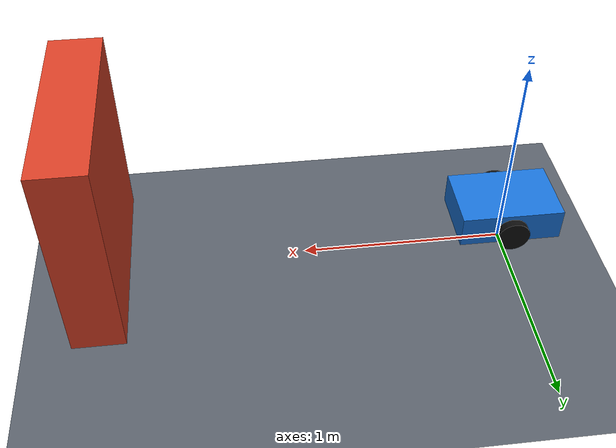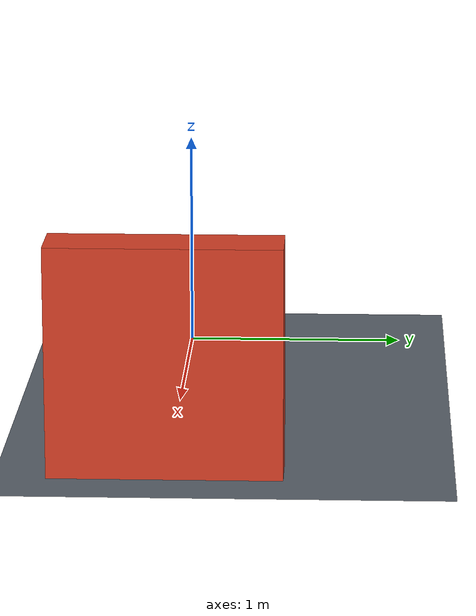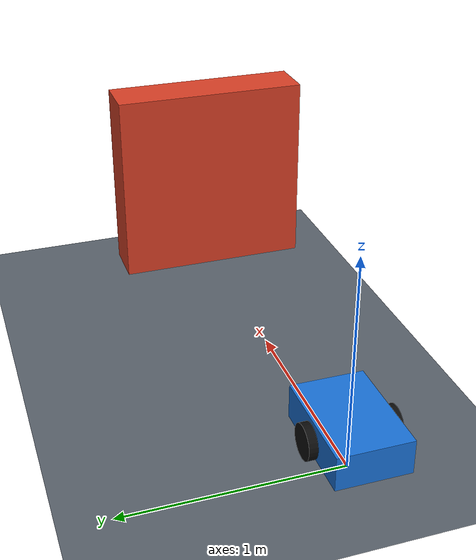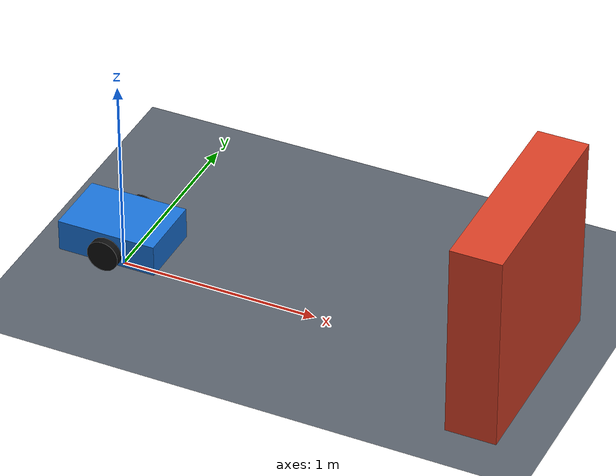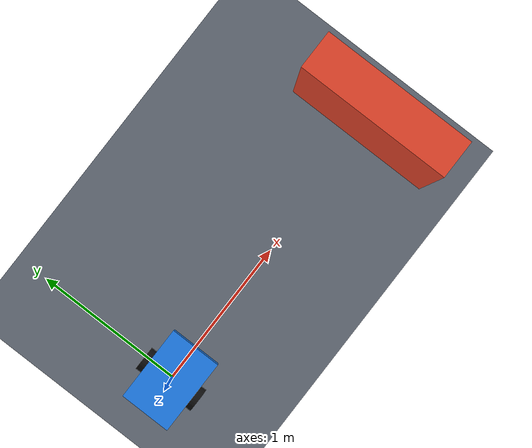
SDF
<?xml version="1.0"?>
<sdf version="1.8">
  <world name="rosclaw_guarded_base">
    <physics name="deterministic_1ms" type="ignored">
      <max_step_size>0.001</max_step_size>
      <real_time_factor>1.0</real_time_factor>
    </physics>

    <plugin
      filename="libignition-gazebo-physics-system.so"
      name="ignition::gazebo::systems::Physics"/>
    <plugin
      filename="libignition-gazebo-user-commands-system.so"
      name="ignition::gazebo::systems::UserCommands"/>
    <plugin
      filename="libignition-gazebo-scene-broadcaster-system.so"
      name="ignition::gazebo::systems::SceneBroadcaster"/>
    <plugin
      filename="libignition-gazebo-sensors-system.so"
      name="ignition::gazebo::systems::Sensors">
      <render_engine>ogre2</render_engine>
    </plugin>

    <light type="directional" name="sun">
      <pose>0 0 10 0 0 0</pose>
      <direction>-0.5 0.1 -0.9</direction>
      <diffuse>0.9 0.9 0.9 1</diffuse>
    </light>

    <model name="ground_plane">
      <static>true</static>
      <link name="ground">
        <collision name="collision">
          <geometry>
            <plane>
              <normal>0 0 1</normal>
              <size>20 20</size>
            </plane>
          </geometry>
          <surface>
            <friction>
              <ode>
                <mu>1.0</mu>
                <mu2>1.0</mu2>
              </ode>
            </friction>
          </surface>
        </collision>
        <visual name="visual">
          <geometry>
            <plane>
              <normal>0 0 1</normal>
              <size>20 20</size>
            </plane>
          </geometry>
          <material>
            <ambient>0.25 0.28 0.32 1</ambient>
            <diffuse>0.35 0.38 0.42 1</diffuse>
          </material>
        </visual>
      </link>
    </model>

    <model name="lidar_target">
      <static>true</static>
      <pose>2.0 0 0.5 0 0 0</pose>
      <link name="link">
        <collision name="collision">
          <geometry><box><size>0.25 1.0 1.0</size></box></geometry>
        </collision>
        <visual name="visual">
          <geometry><box><size>0.25 1.0 1.0</size></box></geometry>
          <material>
            <ambient>0.85 0.25 0.15 1</ambient>
            <diffuse>0.85 0.25 0.15 1</diffuse>
          </material>
        </visual>
      </link>
    </model>

    <model name="guarded_base">
      <pose>0 0 0.10 0 0 0</pose>

      <link name="base_link">
        <inertial>
          <mass>8.0</mass>
          <inertia>
            <ixx>0.10</ixx>
            <iyy>0.18</iyy>
            <izz>0.22</izz>
          </inertia>
        </inertial>
        <collision name="collision">
          <pose>0 0 0.10 0 0 0</pose>
          <geometry><box><size>0.50 0.34 0.16</size></box></geometry>
        </collision>
        <visual name="visual">
          <pose>0 0 0.10 0 0 0</pose>
          <geometry><box><size>0.50 0.34 0.16</size></box></geometry>
          <material>
            <ambient>0.10 0.45 0.85 1</ambient>
            <diffuse>0.10 0.45 0.85 1</diffuse>
          </material>
        </visual>
        <sensor name="front_lidar" type="gpu_lidar">
          <pose>0.22 0 0.22 0 0 0</pose>
          <topic>/guarded_base/scan</topic>
          <update_rate>15</update_rate>
          <lidar>
            <scan>
              <horizontal>
                <samples>181</samples>
                <resolution>1</resolution>
                <min_angle>-1.570796</min_angle>
                <max_angle>1.570796</max_angle>
              </horizontal>
              <vertical>
                <samples>1</samples>
                <resolution>1</resolution>
                <min_angle>0</min_angle>
                <max_angle>0</max_angle>
              </vertical>
            </scan>
            <range>
              <min>0.08</min>
              <max>8.0</max>
              <resolution>0.01</resolution>
            </range>
          </lidar>
          <always_on>true</always_on>
          <visualize>false</visualize>
        </sensor>
      </link>

      <link name="left_wheel">
        <pose>0 0.19 0.08 1.570796 0 0</pose>
        <inertial>
          <mass>0.6</mass>
          <inertia>
            <ixx>0.002</ixx>
            <iyy>0.002</iyy>
            <izz>0.002</izz>
          </inertia>
        </inertial>
        <collision name="collision">
          <geometry><cylinder><radius>0.08</radius><length>0.04</length></cylinder></geometry>
          <surface>
            <friction><ode><mu>1.2</mu><mu2>1.2</mu2></ode></friction>
          </surface>
        </collision>
        <visual name="visual">
          <geometry><cylinder><radius>0.08</radius><length>0.04</length></cylinder></geometry>
          <material><ambient>0.05 0.05 0.05 1</ambient></material>
        </visual>
      </link>

      <link name="right_wheel">
        <pose>0 -0.19 0.08 1.570796 0 0</pose>
        <inertial>
          <mass>0.6</mass>
          <inertia>
            <ixx>0.002</ixx>
            <iyy>0.002</iyy>
            <izz>0.002</izz>
          </inertia>
        </inertial>
        <collision name="collision">
          <geometry><cylinder><radius>0.08</radius><length>0.04</length></cylinder></geometry>
          <surface>
            <friction><ode><mu>1.2</mu><mu2>1.2</mu2></ode></friction>
          </surface>
        </collision>
        <visual name="visual">
          <geometry><cylinder><radius>0.08</radius><length>0.04</length></cylinder></geometry>
          <material><ambient>0.05 0.05 0.05 1</ambient></material>
        </visual>
      </link>

      <link name="rear_caster">
        <pose>-0.19 0 0.045 0 0 0</pose>
        <inertial>
          <mass>0.2</mass>
          <inertia>
            <ixx>0.0002</ixx>
            <iyy>0.0002</iyy>
            <izz>0.0002</izz>
          </inertia>
        </inertial>
        <collision name="collision">
          <geometry><sphere><radius>0.045</radius></sphere></geometry>
          <surface>
            <friction><ode><mu>0.05</mu><mu2>0.05</mu2></ode></friction>
          </surface>
        </collision>
        <visual name="visual">
          <geometry><sphere><radius>0.045</radius></sphere></geometry>
        </visual>
      </link>

      <joint name="left_wheel_joint" type="revolute">
        <parent>base_link</parent>
        <child>left_wheel</child>
        <axis><xyz>0 1 0</xyz></axis>
      </joint>
      <joint name="right_wheel_joint" type="revolute">
        <parent>base_link</parent>
        <child>right_wheel</child>
        <axis><xyz>0 1 0</xyz></axis>
      </joint>
      <joint name="rear_caster_joint" type="ball">
        <parent>base_link</parent>
        <child>rear_caster</child>
      </joint>

      <plugin
        filename="libignition-gazebo-diff-drive-system.so"
        name="ignition::gazebo::systems::DiffDrive">
        <left_joint>left_wheel_joint</left_joint>
        <right_joint>right_wheel_joint</right_joint>
        <wheel_separation>0.38</wheel_separation>
        <wheel_radius>0.08</wheel_radius>
        <topic>/guarded_base/cmd_vel</topic>
        <odom_topic>/guarded_base/odom</odom_topic>
        <tf_topic>/guarded_base/tf</tf_topic>
        <frame_id>odom</frame_id>
        <child_frame_id>base_link</child_frame_id>
        <odom_publish_frequency>30</odom_publish_frequency>
        <max_linear_acceleration>8.0</max_linear_acceleration>
        <min_linear_acceleration>-8.0</min_linear_acceleration>
        <max_angular_acceleration>12.0</max_angular_acceleration>
        <min_angular_acceleration>-12.0</min_angular_acceleration>
        <max_linear_velocity>0.5</max_linear_velocity>
        <min_linear_velocity>-0.5</min_linear_velocity>
        <max_angular_velocity>1.0</max_angular_velocity>
        <min_angular_velocity>-1.0</min_angular_velocity>
      </plugin>
    </model>
  </world>
</sdf>
